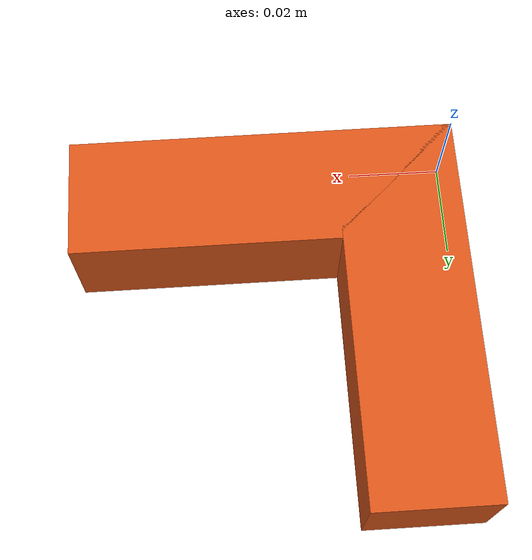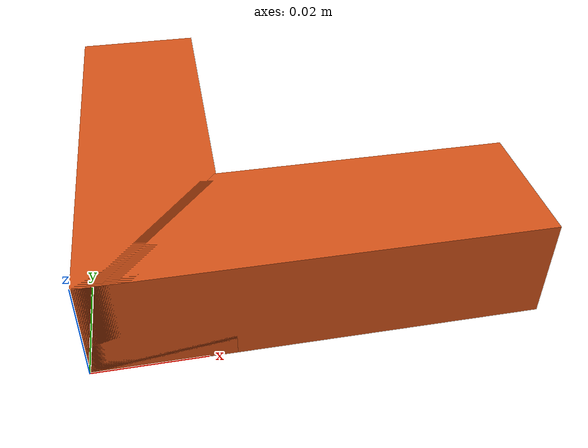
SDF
<sdf version="1.7">
  <model name="puzzle_corner_piece">
    <link name="corner_link">
      <inertial>
        <mass>0.05</mass>
        <inertia>
          <ixx>1.0e-04</ixx>
          <iyy>1.0e-04</iyy>
          <izz>2.0e-04</izz>
          <ixy>0</ixy>
          <ixz>0</ixz>
          <iyz>0</iyz>
        </inertia>
      </inertial>
      <visual name="corner_vertical">
        <pose>0.0125 0.04 0.01 0 0 0</pose>
        <geometry>
          <box>
            <size>0.025 0.08 0.02</size>
          </box>
        </geometry>
        <material>
          <ambient>0.85 0.33 0.10 1</ambient>
          <diffuse>0.85 0.33 0.10 1</diffuse>
          <specular>0.2 0.2 0.2 1</specular>
        </material>
      </visual>
      <visual name="corner_horizontal">
        <pose>0.04 0.0125 0.01 0 0 0</pose>
        <geometry>
          <box>
            <size>0.08 0.025 0.02</size>
          </box>
        </geometry>
        <material>
          <ambient>0.85 0.33 0.10 1</ambient>
          <diffuse>0.85 0.33 0.10 1</diffuse>
          <specular>0.2 0.2 0.2 1</specular>
        </material>
      </visual>

      <collision name="corner_vertical_collision">
        <pose>0.0125 0.04 0.01 0 0 0</pose>
        <geometry>
          <box>
            <size>0.025 0.08 0.02</size>
          </box>
        </geometry>
      </collision>
      <collision name="corner_horizontal_collision">
        <pose>0.04 0.0125 0.01 0 0 0</pose>
        <geometry>
          <box>
            <size>0.08 0.025 0.02</size>
          </box>
        </geometry>
      </collision>
    </link>
  </model>
</sdf>
